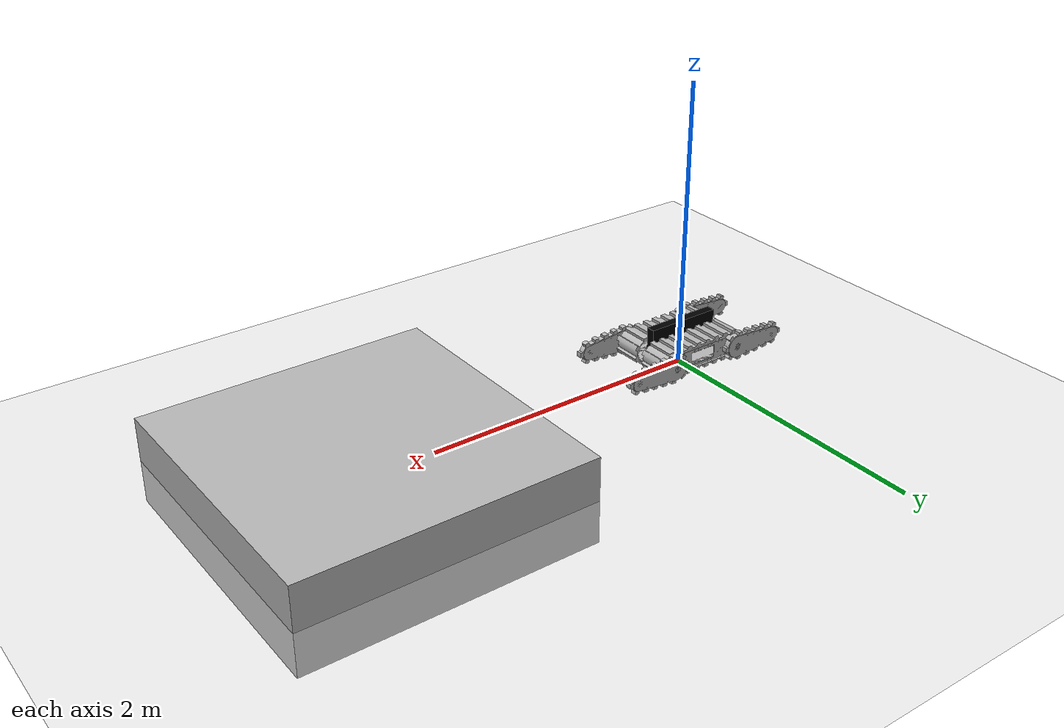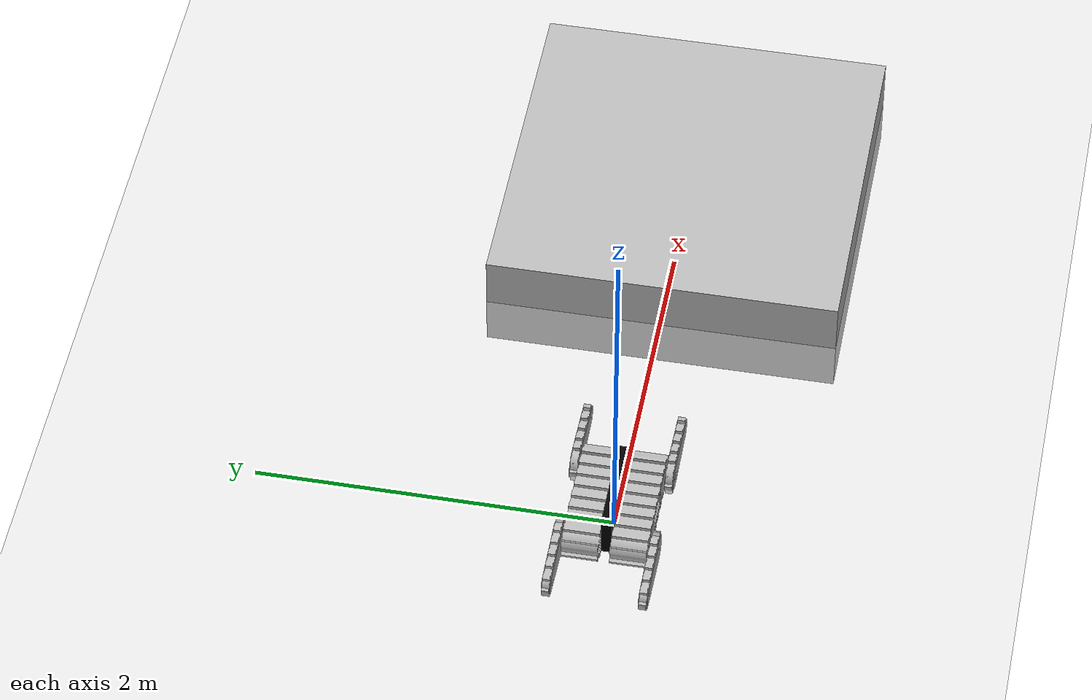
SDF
<?xml version="1.0" ?>
<sdf version="1.6">
    <world name="Nubot_Pummba_test_plate">
        <!--A demo world for tracked vehicles.-->

        <include>
            <uri>model://sun</uri>
        </include>

        <include>
            <uri>model://ground_plane</uri>
        </include>

        <model name="plate_obstacle">
            <pose frame=''>2.5 0 0 0 0 0</pose>
            <include>
                <uri>model://plate_obstacle</uri>
            </include>
        </model>

        <model name="Nubot_Pummba">
            <pose frame=''>0 0 0.15 0 0 0</pose>
            <include>
                <uri>model://Nubot_Pummba</uri>
            </include>
        </model>

    </world>
</sdf>

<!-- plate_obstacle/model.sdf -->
<sdf version="1.6">
        <model name="plate_obstacle">
            <static>true</static>
            <pose>0 0 0 0 0 0</pose>
            <link name="box">
                <collision name="plate_collision">
                    <pose frame="">0 0 0 0 0 0</pose>
                    <geometry>
                        <box>
                            <size>2 2 0.60</size>
                        </box>
                    </geometry>
                    <surface>
                        <friction>
                            <ode>
                                <mu>1</mu>
                            </ode>
                        </friction>
                    </surface>
                </collision>
                <visual name="plate_visual">
                    <pose frame="">0 0 0 0 0 0</pose>
                    <geometry>
                        <box>
                            <size>2 2 0.60</size>
                        </box>
                    </geometry>
                </visual>
            </link>
        </model>
</sdf>

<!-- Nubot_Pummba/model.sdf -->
<sdf version='1.6'>
  <model name='Nubot_Pummba'>
    <!--base_link-->
    <link name='base_link'>
      <pose frame=''>0 0 0 0 0 0</pose>
      <inertial>
        <pose frame=''>-0.122 0 0.118 1.5708 -0 0</pose>
        <mass>10</mass>
        <inertia>
          <ixx>0.0545</ixx>
          <ixy>0</ixy>
          <ixz>0</ixz>
          <iyy>0.37442</iyy>
          <iyz>0</iyz>
          <izz>0.41992</izz>
        </inertia>
      </inertial>
      <self_collide>0</self_collide>
      <gravity>1</gravity>
      <kinematic>0</kinematic>
      <enable_wind>0</enable_wind>
      <visual name='base_link_visual'>
        <pose frame=''>0 0 0.055 0 -0 0</pose>
        <geometry>
          <box>
            <size>0.544 0.06 0.25</size>
          </box>
        </geometry>
        <material>
          <shader type='pixel'>
            <normal_map>__default__</normal_map>
          </shader>
          <script>
            <name>ModelPreview_1::base_link::base_link_visual_MATERIAL_</name>
            <uri>__default__</uri>
          </script>
          <ambient>0 0 0 1</ambient>
          <diffuse>0 0 0 1</diffuse>
          <specular>0 0 0 1</specular>
          <emissive>0 0 0 1</emissive>
        </material>
        <transparency>0</transparency>
        <cast_shadows>1</cast_shadows>
      </visual>
      <collision name='base_link_collision'>
        <laser_retro>0</laser_retro>
        <max_contacts>10</max_contacts>
        <pose frame=''>0 0 0.055 0 -0 0</pose>
        <geometry>
          <box>
            <size>0.544 0.06 0.25</size>
          </box>
        </geometry>
        <surface>
          <friction>
            <ode>
              <mu>1</mu>
              <mu2>1</mu2>
              <fdir1>0 0 0</fdir1>
              <slip1>0</slip1>
              <slip2>0</slip2>
            </ode>
            <torsional>
              <coefficient>1</coefficient>
              <patch_radius>0</patch_radius>
              <surface_radius>0</surface_radius>
              <use_patch_radius>1</use_patch_radius>
              <ode>
                <slip>0</slip>
              </ode>
            </torsional>
          </friction>
          <bounce>
            <restitution_coefficient>0</restitution_coefficient>
            <threshold>1e+06</threshold>
          </bounce>
          <contact>
            <collide_without_contact>0</collide_without_contact>
            <collide_without_contact_bitmask>1</collide_without_contact_bitmask>
            <collide_bitmask>1</collide_bitmask>
            <ode>
              <soft_cfm>0</soft_cfm>
              <soft_erp>0.2</soft_erp>
              <kp>1e+13</kp>
              <kd>1</kd>
              <max_vel>0.01</max_vel>
              <min_depth>0</min_depth>
            </ode>
          </contact>
        </surface>
      </collision>
    </link>

    <!--left_track-->
    <link name='left_track'>
      <pose frame=''>-0 0.132 0 0 -0 0</pose>
      <inertial>
        <pose frame=''>0 0 0 0 -0 0</pose>
        <mass>20</mass>
        <inertia>
          <ixx>0.15</ixx>
          <ixy>0</ixy>
          <ixz>0</ixz>
          <iyy>0.9</iyy>
          <iyz>0</iyz>
          <izz>0.9</izz>
        </inertia>
      </inertial>
      <gravity>1</gravity>
      <kinematic>0</kinematic>
      <self_collide>0</self_collide>
      <enable_wind>0</enable_wind>
      <visual name='left_track_visual_1'><!--main_track-->
        <pose frame=''>0.272 0 0 0 0 1.5708</pose>
        <geometry>
          <mesh>
            <uri>model://Nubot_Pummba/meshes/main_track.dae</uri>
          </mesh>
        </geometry>
      </visual>
      <visual name='left_track_visual'><!--main_board-->
        <pose frame=''>0 0.098 0 0 0 0</pose>
        <geometry>
          <mesh>
            <uri>model://Nubot_Pummba/meshes/main_board.dae</uri>
          </mesh>
        </geometry>
      </visual>
      <visual name='left_track_visual_2'>
        <pose frame=''>-0.272 0 0 1.5708 -0 0</pose>
        <geometry>
          <cylinder>
            <length>0.2</length>
            <radius>0.105</radius>
          </cylinder>
        </geometry>
        <material>
          <shader type='pixel'>
            <normal_map>__default__</normal_map>
          </shader>
          <script>
            <name>ModelPreview_1::left_track::left_track_visual_2_MATERIAL_</name>
            <uri>__default__</uri>
          </script>
          <ambient>0 0 0 1</ambient>
          <diffuse>0 0 0 1</diffuse>
          <specular>0 0 0 1</specular>
          <emissive>1 1 1 1</emissive>
        </material>
        <transparency>1</transparency><!--disappear the other wheel-->
        <cast_shadows>1</cast_shadows>
      </visual>
      <collision name='left_track_collision_1'>
        <max_contacts>10</max_contacts>
        <pose frame=''>0.272 0 0 1.5708 -0 0</pose>
        <geometry>
          <cylinder>
            <radius>0.105</radius>
            <length>0.2</length>
          </cylinder>
        </geometry>
        <surface>
          <friction>
            <ode>
              <mu>0.7</mu>
              <mu2>150</mu2>
              <fdir1>0 1 0</fdir1>
            </ode>
          </friction>
        </surface>
      </collision>
      <collision name='left_track_collision_2'>
        <max_contacts>10</max_contacts>
        <pose frame=''>-0.272 0 0 1.5708 -0 0</pose>
        <geometry>
          <cylinder>
            <radius>0.105</radius>
            <length>0.2</length>
          </cylinder>
        </geometry>
        <surface>
          <friction>
            <ode>
              <mu>0.7</mu>
              <mu2>150</mu2>
              <fdir1>0 1 0</fdir1>
            </ode>
          </friction>
        </surface>
      </collision>
      <collision name='left_track_collision'>
        <max_contacts>10</max_contacts>
        <pose frame=''>0 0 0 1.5708 -0 1.5708</pose>
        <geometry>
          <box>
            <size>0.2 0.21 0.544</size>
          </box>
        </geometry>
        <surface>
          <friction>
            <ode>
              <mu>0.7</mu>
              <mu2>150</mu2>
              <fdir1>0 1 0</fdir1>
            </ode>
          </friction>
        </surface>
      </collision>
    </link>

    <!--right_track-->
    <link name='right_track'>
      <pose frame=''>0 -0.132 -0 0 -0 0</pose>
      <inertial>
        <pose frame=''>0 0 0 0 -0 0</pose>
        <mass>20</mass>
        <inertia>
          <ixx>0.15</ixx>
          <ixy>0</ixy>
          <ixz>0</ixz>
          <iyy>0.9</iyy>
          <iyz>0</iyz>
          <izz>0.9</izz>
        </inertia>
      </inertial>
      <gravity>1</gravity>
      <kinematic>0</kinematic>
      <self_collide>0</self_collide>
      <enable_wind>0</enable_wind>
      <visual name='right_track_visual_2'><!--main_track-->
        <pose frame=''>-0.272 0 0 0 0 -1.5708</pose>
        <geometry>
          <mesh>
            <uri>model://Nubot_Pummba/meshes/main_track.dae</uri>
          </mesh>
        </geometry>
      </visual>
      <visual name='right_track_visual'><!--main_board-->
        <pose frame=''>0 -0.098 0 0 0 0</pose>
        <geometry>
          <mesh>
            <uri>model://Nubot_Pummba/meshes/main_board.dae</uri>
          </mesh>
        </geometry>
      </visual>
      <visual name='right_track_visual_1'>
        <pose frame=''>0.272 0 0 1.5708 -0 0</pose>
        <geometry>
          <cylinder>
            <length>0.2</length>
            <radius>0.105</radius>
          </cylinder>
        </geometry>
        <material>
          <shader type='pixel'>
            <normal_map>__default__</normal_map>
          </shader>
          <script>
            <name>ModelPreview_1::right_track::right_track_visual_1_MATERIAL_</name>
            <uri>__default__</uri>
          </script>
          <ambient>0 0 0 1</ambient>
          <diffuse>0 0 0 1</diffuse>
          <specular>0 0 0 1</specular>
          <emissive>1 1 1 1</emissive>
        </material>
        <transparency>1</transparency><!--disappear the other wheel-->
        <cast_shadows>1</cast_shadows>
      </visual>
      <collision name='right_track_collision_1'>
        <max_contacts>10</max_contacts>
        <pose frame=''>0.272 0 0 1.5708 -0 0</pose>
        <geometry>
          <cylinder>
            <radius>0.105</radius>
            <length>0.2</length>
          </cylinder>
        </geometry>
        <surface>
          <friction>
            <ode>
              <mu>0.7</mu>
              <mu2>150</mu2>
              <fdir1>0 1 0</fdir1>
            </ode>
          </friction>
        </surface>
      </collision>
      <collision name='right_track_collision'>
        <max_contacts>10</max_contacts>
        <pose frame=''>0 0 0 1.5708 -0 1.5708</pose>
        <geometry>
          <box>
            <size>0.2 0.21 0.544</size>
          </box>
        </geometry>
        <surface>
          <friction>
            <ode>
              <mu>0.7</mu>
              <mu2>150</mu2>
              <fdir1>0 1 0</fdir1>
            </ode>
          </friction>
        </surface>
      </collision>
      <collision name='right_track_collision_2'>
        <max_contacts>10</max_contacts>
        <pose frame=''>-0.272 0 0 1.5708 -0 0</pose>
        <geometry>
          <cylinder>
            <radius>0.105</radius>
            <length>0.2</length>
          </cylinder>
        </geometry>
        <surface>
          <friction>
            <ode>
              <mu>0.7</mu>
              <mu2>150</mu2>
              <fdir1>0 1 0</fdir1>
            </ode>
          </friction>
        </surface>
      </collision>
    </link>

    <!--front_left_flipper-->
    <link name='front_left_flipper'>
      <pose frame=''>0.272 0.263 0 0 -0.0 0</pose>
      <inertial>
        <pose frame=''>0.135 0 0 0 -0 0</pose>
        <mass>2.4</mass>
        <inertia>
          <ixx>0.00574</ixx>
          <ixy>0</ixy>
          <ixz>0</ixz>
          <iyy>0.05090</iyy>
          <iyz>0</iyz>
          <izz>0.04640</izz>
        </inertia>
      </inertial>
      <gravity>1</gravity>
      <velocity_decay/>
      <self_collide>1</self_collide>
      <kinematic>0</kinematic>
      <enable_wind>0</enable_wind>

      <visual name='front_left_flipper_visual_large_wheel_visual'><!--flipper_track-->
        <pose frame=''>0 0 0 0 0 -1.5708</pose>
        <geometry>
          <mesh>
            <uri>model://Nubot_Pummba/meshes/flipper_track.dae</uri>
          </mesh>
        </geometry>
      </visual>
      <visual name='front_left_flipper_visual_small_wheel_visual_1'><!--flipper_board inside-->
        <pose frame=''>0 -0.023 0 0 0 3.1416</pose>
        <geometry>
          <mesh>
            <uri>model://Nubot_Pummba/meshes/flipper_board.dae</uri>
          </mesh>
        </geometry>
      </visual>
      <visual name='front_left_flipper_visual_middle_bar_visual_4'><!--flipper_board outside-->
        <pose frame=''>0 0.023 0 0 0 3.1416</pose>
        <geometry>
          <mesh>
            <uri>model://Nubot_Pummba/meshes/flipper_board.dae</uri>
          </mesh>
        </geometry>
      </visual>
      <visual name='front_left_flipper_visual_bottom_bar_visual_3'>
        <pose frame=''>0.1635 0 -0.04 0 -0.076 0</pose>
        <geometry>
          <box>
            <size>0.327 0.048 0.105</size>
          </box>
        </geometry>
        <material>
          <shader type='pixel'>
            <normal_map>__default__</normal_map>
          </shader>
          <script>
            <name>ModelPreview_1::front_left_flipper::front_left_flipper_visual_bottom_bar_visual_3_MATERIAL_</name>
            <uri>__default__</uri>
          </script>
          <ambient>0 0 0 1</ambient>
          <diffuse>0 0 0 1</diffuse>
          <specular>0 0 0 1</specular>
          <emissive>0 0 0 1</emissive>
        </material>
        <transparency>1</transparency><!--disappear the bar-->
        <cast_shadows>1</cast_shadows>
      </visual>
      <visual name='front_left_flipper_visual_top_bar_visual_2'>
        <pose frame=''>0.1635 0 0.04 0 0.076 0</pose>
        <geometry>
          <box>
            <size>0.327 0.048 0.105</size>
          </box>
        </geometry>
        <material>
          <shader type='pixel'>
            <normal_map>__default__</normal_map>
          </shader>
          <script>
            <name>ModelPreview_1::front_left_flipper::front_left_flipper_visual_top_bar_visual_2_MATERIAL_</name>
            <uri>__default__</uri>
          </script>
          <ambient>0 0 0 1</ambient>
          <diffuse>0 0 0 1</diffuse>
          <specular>0 0 0 1</specular>
          <emissive>0 0 0 1</emissive>
        </material>
        <transparency>1</transparency><!--disappear the bar-->
        <cast_shadows>1</cast_shadows>
      </visual>

      <collision name='front_left_flipper_collision_large_wheel_collision'>
        <max_contacts>20</max_contacts>
        <pose frame=''>0 0 0 1.5708 -0 0</pose>
        <geometry>
          <cylinder>
            <radius>0.105</radius>
            <length>0.04</length>
          </cylinder>
        </geometry>
        <surface>
          <friction>
            <ode>
              <mu>0.7</mu>
              <mu2>150</mu2>
              <fdir1>0 1 0</fdir1>
            </ode>
          </friction>
          <contact>
            <ode/>
          </contact>
        </surface>
      </collision>
      <collision name='front_left_flipper_collision_small_wheel_collision_1'>
        <max_contacts>20</max_contacts>
        <pose frame=''>0.327 0 0 1.5708 -0 0</pose>
        <geometry>
          <cylinder>
            <radius>0.08</radius>
            <length>0.04</length>
          </cylinder>
        </geometry>
        <surface>
          <friction>
            <ode>
              <mu>0.7</mu>
              <mu2>150</mu2>
              <fdir1>0 1 0</fdir1>
            </ode>
          </friction>
          <contact>
            <ode/>
          </contact>
        </surface>
      </collision>
      <collision name='front_left_flipper_collision_middle_bar_collision_4'>
        <max_contacts>20</max_contacts>
        <pose frame=''>0.166 0 0 0 0 0</pose>
        <geometry>
          <box>
            <size>0.2 0.048 0.07</size>
          </box>
        </geometry>
        <surface>
          <friction>
            <ode>
              <mu>0.7</mu>
              <mu2>150</mu2>
              <fdir1>0 1 0</fdir1>
            </ode>
          </friction>
          <contact>
            <ode/>
          </contact>
        </surface>
      </collision>
      <collision name='front_left_flipper_collision_bottom_bar_collision_3'>
        <max_contacts>20</max_contacts>
        <pose frame=''>0.1635 0 -0.04 0 -0.076 0</pose>
        <geometry>
          <box>
            <size>0.327 0.048 0.105</size>
          </box>
        </geometry>
        <surface>
          <friction>
            <ode>
              <mu>0.7</mu>
              <mu2>150</mu2>
              <fdir1>0 1 0</fdir1>
            </ode>
          </friction>
          <contact>
            <ode/>
          </contact>
        </surface>
      </collision>
      <collision name='front_left_flipper_collision_top_bar_collision_2'>
        <max_contacts>20</max_contacts>
        <pose frame=''>0.1635 0 0.04 0 0.076 0</pose>
        <geometry>
          <box>
            <size>0.327 0.048 0.105</size>
          </box>
        </geometry>
        <surface>
          <friction>
            <ode>
              <mu>0.7</mu>
              <mu2>150</mu2>
              <fdir1>0 1 0</fdir1>
            </ode>
          </friction>
          <contact>
            <ode/>
          </contact>
        </surface>
      </collision>
    </link>

    <!--rear_left_flipper-->
    <link name='rear_left_flipper'>
      <pose frame=''>-0.272 0.263 0 3.1416 -0.0 3.1416</pose>
      <inertial>
        <pose frame=''>0.135 0 0 0 -0 0</pose>
        <mass>2.4</mass>
        <inertia>
          <ixx>0.00574</ixx>
          <ixy>0</ixy>
          <ixz>0</ixz>
          <iyy>0.05090</iyy>
          <iyz>0</iyz>
          <izz>0.04640</izz>
        </inertia>
      </inertial>
      <gravity>1</gravity>
      <velocity_decay/>
      <self_collide>1</self_collide>
      <kinematic>0</kinematic>
      <enable_wind>0</enable_wind>
      <visual name='rear_left_flipper_visual_large_wheel_visual'><!--flipper_track-->
        <pose frame=''>0 0 0 0 0 -1.5708</pose>
        <geometry>
          <mesh>
            <uri>model://Nubot_Pummba/meshes/flipper_track.dae</uri>
          </mesh>
        </geometry>
      </visual>
      <visual name='rear_left_flipper_visual_small_wheel_visual_1'><!--flipper_board inside-->
        <pose frame=''>0 -0.023 0 0 0 3.1416</pose>
        <geometry>
          <mesh>
            <uri>model://Nubot_Pummba/meshes/flipper_board.dae</uri>
          </mesh>
        </geometry>
      </visual>
      <visual name='rear_left_flipper_visual_middle_bar_visual_4'><!--flipper_board outside-->
        <pose frame=''>0 0.023 0 0 0 3.1416</pose>
        <geometry>
          <mesh>
            <uri>model://Nubot_Pummba/meshes/flipper_board.dae</uri>
          </mesh>
        </geometry>
      </visual>
      <visual name='rear_left_flipper_visual_bottom_bar_visual_3'>
        <pose frame=''>0.1653 0 -0.04 0 -0.076 0</pose>
        <geometry>
          <box>
            <size>0.327 0.048 0.105</size>
          </box>
        </geometry>
        <material>
          <shader type='pixel'>
            <normal_map>__default__</normal_map>
          </shader>
          <script>
            <name>ModelPreview_1::rear_left_flipper::rear_left_flipper_visual_bottom_bar_visual_3_MATERIAL_</name>
            <uri>__default__</uri>
          </script>
          <ambient>0 0 0 1</ambient>
          <diffuse>0 0 0 1</diffuse>
          <specular>0 0 0 1</specular>
          <emissive>0 0 0 1</emissive>
        </material>
        <transparency>1</transparency><!--disappear the bar-->
        <cast_shadows>1</cast_shadows>
      </visual>
      <visual name='rear_left_flipper_visual_top_bar_visual_2'>
        <pose frame=''>0.1635 0 0.04 0 0.076 0</pose>
        <geometry>
          <box>
            <size>0.327 0.048 0.105</size>
          </box>
        </geometry>
        <material>
          <shader type='pixel'>
            <normal_map>__default__</normal_map>
          </shader>
          <script>
            <name>ModelPreview_1::rear_left_flipper::rear_left_flipper_visual_top_bar_visual_2_MATERIAL_</name>
            <uri>__default__</uri>
          </script>
          <ambient>0 0 0 1</ambient>
          <diffuse>0 0 0 1</diffuse>
          <specular>0 0 0 1</specular>
          <emissive>0 0 0 1</emissive>
        </material>
        <transparency>1</transparency><!--disappear the bar-->
        <cast_shadows>1</cast_shadows>
      </visual>

      <collision name='rear_left_flipper_collision_large_wheel_collision'>
        <max_contacts>20</max_contacts>
        <pose frame=''>0 0 0 1.5708 -0 0</pose>
        <geometry>
          <cylinder>
            <radius>0.105</radius>
            <length>0.04</length>
          </cylinder>
        </geometry>
        <surface>
          <friction>
            <ode>
              <mu>0.7</mu>
              <mu2>150</mu2>
              <fdir1>0 1 0</fdir1>
            </ode>
          </friction>
          <contact>
            <ode/>
          </contact>
        </surface>
      </collision>
      <collision name='rear_left_flipper_collision_small_wheel_collision_1'>
        <max_contacts>20</max_contacts>
        <pose frame=''>0.327 0 0 1.5708 -0 0</pose>
        <geometry>
          <cylinder>
            <radius>0.08</radius>
            <length>0.04</length>
          </cylinder>
        </geometry>
        <surface>
          <friction>
            <ode>
              <mu>0.7</mu>
              <mu2>150</mu2>
              <fdir1>0 1 0</fdir1>
            </ode>
          </friction>
        </surface>
      </collision>
      <collision name='rear_left_flipper_collision_middle_bar_collision_4'>
        <max_contacts>20</max_contacts>
        <pose frame=''>0.166 0 0 0 0 0</pose>
        <geometry>
          <box>
            <size>0.2 0.048 0.07</size>
          </box>
        </geometry>
        <surface>
          <friction>
            <ode>
              <mu>0.7</mu>
              <mu2>150</mu2>
              <fdir1>0 1 0</fdir1>
            </ode>
          </friction>
        </surface>
      </collision>
      <collision name='rear_left_flipper_collision_bottom_bar_collision_3'>
        <max_contacts>20</max_contacts>
        <pose frame=''>0.1635 0 -0.04 0 -0.076 0</pose>
        <geometry>
          <box>
            <size>0.327 0.048 0.105</size>
          </box>
        </geometry>
        <surface>
          <friction>
            <ode>
              <mu>0.7</mu>
              <mu2>150</mu2>
              <fdir1>0 1 0</fdir1>
            </ode>
          </friction>
        </surface>
      </collision>
      <collision name='rear_left_flipper_collision_top_bar_collision_2'>
        <max_contacts>20</max_contacts>
        <pose frame=''>0.1635 0 0.04 0 0.076 0</pose>
        <geometry>
          <box>
            <size>0.327 0.048 0.105</size>
          </box>
        </geometry>
        <surface>
          <friction>
            <ode>
              <mu>0.7</mu>
              <mu2>150</mu2>
              <fdir1>0 1 0</fdir1>
            </ode>
          </friction>
        </surface>
      </collision>
    </link>

    <!--front_right_flipper-->
    <link name='front_right_flipper'>
      <pose frame=''>0.272 -0.263 0 3.1416 0.0 3.1416</pose>
      <inertial>
        <pose frame=''>-0.135 0 0 0 -0 0</pose>
        <mass>2.4</mass>
        <inertia>
          <ixx>0.00574</ixx>
          <ixy>0</ixy>
          <ixz>0</ixz>
          <iyy>0.05090</iyy>
          <iyz>0</iyz>
          <izz>0.04640</izz>
        </inertia>
      </inertial>
      <gravity>1</gravity>
      <velocity_decay/>
      <self_collide>1</self_collide>
      <kinematic>0</kinematic>
      <enable_wind>0</enable_wind>

      <visual name='front_right_flipper_visual_large_wheel_visual'><!--flipper_track-->
        <pose frame=''>0 0 0 0 0 1.5708</pose>
        <geometry>
          <mesh>
            <uri>model://Nubot_Pummba/meshes/flipper_track.dae</uri>
          </mesh>
        </geometry>
      </visual>
      <visual name='front_right_flipper_visual_small_wheel_visual_1'><!--flipper_board inside-->
        <pose frame=''>0 0.023 0 0 0 0</pose>
        <geometry>
          <mesh>
            <uri>model://Nubot_Pummba/meshes/flipper_board.dae</uri>
          </mesh>
        </geometry>
      </visual>
      <visual name='front_right_flipper_visual_middle_bar_visual_4'><!--flipper_board outside-->
        <pose frame=''>0 -0.023 0 -0 0 0</pose>
        <geometry>
          <mesh>
            <uri>model://Nubot_Pummba/meshes/flipper_board.dae</uri>
          </mesh>
        </geometry>
      </visual>
      <visual name='front_right_flipper_visual_bottom_bar_visual_3'>
        <pose frame=''>-0.1635 0 -0.04 0 -0.076 -3.1416</pose>
        <geometry>
          <box>
            <size>0.327 0.048 0.105</size>
          </box>
        </geometry>
        <material>
          <shader type='pixel'>
            <normal_map>__default__</normal_map>
          </shader>
          <script>
            <name>ModelPreview_1::front_right_flipper::front_right_flipper_visual_bottom_bar_visual_3_MATERIAL_</name>
            <uri>__default__</uri>
          </script>
          <ambient>0 0 0 1</ambient>
          <diffuse>0 0 0 1</diffuse>
          <specular>0 0 0 1</specular>
          <emissive>0 0 0 1</emissive>
        </material>
        <transparency>1</transparency><!--disappear the bar-->
        <cast_shadows>1</cast_shadows>
      </visual>
      <visual name='front_right_flipper_visual_top_bar_visual_2'>
        <pose frame=''>-0.1635 0 0.04 -0 0.076 -3.1416</pose>
        <geometry>
          <box>
            <size>0.327 0.048 0.105</size>
          </box>
        </geometry>
        <material>
          <shader type='pixel'>
            <normal_map>__default__</normal_map>
          </shader>
          <script>
            <name>ModelPreview_1::front_right_flipper::front_right_flipper_visual_top_bar_visual_2_MATERIAL_</name>
            <uri>__default__</uri>
          </script>
          <ambient>0 0 0 1</ambient>
          <diffuse>0 0 0 1</diffuse>
          <specular>0 0 0 1</specular>
          <emissive>0 0 0 1</emissive>
        </material>
        <transparency>1</transparency><!--disappear the bar-->
        <cast_shadows>1</cast_shadows>
      </visual>

      <collision name='front_right_flipper_collision_large_wheel_collision'>
        <max_contacts>20</max_contacts>
        <pose frame=''>0 0 0 1.5708 -0 0</pose>
        <geometry>
          <cylinder>
            <radius>0.105</radius>
            <length>0.04</length>
          </cylinder>
        </geometry>
        <surface>
          <friction>
            <ode>
              <mu>0.7</mu>
              <mu2>150</mu2>
              <fdir1>0 1 0</fdir1>
            </ode>
          </friction>
        </surface>
      </collision>
      <collision name='front_right_flipper_collision_small_wheel_collision_1'>
        <max_contacts>20</max_contacts>
        <pose frame=''>-0.327 0 0 1.5708 -0 0</pose>
        <geometry>
          <cylinder>
            <radius>0.08</radius>
            <length>0.04</length>
          </cylinder>
        </geometry>
        <surface>
          <friction>
            <ode>
              <mu>0.7</mu>
              <mu2>150</mu2>
              <fdir1>0 1 0</fdir1>
            </ode>
          </friction>
        </surface>
      </collision>
      <collision name='front_right_flipper_collision_middle_bar_collision_4'>
        <max_contacts>20</max_contacts>
        <pose frame=''>-0.166 0 0 -0 0 -3.1416</pose>
        <geometry>
          <box>
            <size>0.2 0.048 0.07</size>
          </box>
        </geometry>
        <surface>
          <friction>
            <ode>
              <mu>0.7</mu>
              <mu2>150</mu2>
              <fdir1>0 1 0</fdir1>
            </ode>
          </friction>
        </surface>
      </collision>
      <collision name='front_right_flipper_collision_bottom_bar_collision_3'>
        <max_contacts>20</max_contacts>
        <pose frame=''>-0.1635 0 -0.04 0 -0.076 -3.1416</pose>
        <geometry>
          <box>
            <size>0.327 0.048 0.105</size>
          </box>
        </geometry>
        <surface>
          <friction>
            <ode>
              <mu>0.7</mu>
              <mu2>150</mu2>
              <fdir1>0 1 0</fdir1>
            </ode>
          </friction>
        </surface>
      </collision>
      <collision name='front_right_flipper_collision_top_bar_collision_2'>
        <max_contacts>20</max_contacts>
        <pose frame=''>-0.1635 0 0.04 -0 0.076 -3.1416</pose>
        <geometry>
          <box>
            <size>0.327 0.048 0.105</size>
          </box>
        </geometry>
        <surface>
          <friction>
            <ode>
              <mu>0.7</mu>
              <mu2>150</mu2>
              <fdir1>0 1 0</fdir1>
            </ode>
          </friction>
        </surface>
      </collision>
    </link>

    <!--rear_right_flipper-->
    <link name='rear_right_flipper'>
      <pose frame=''>-0.272 -0.263 0 0 0.0 0</pose>
      <inertial>
        <pose frame=''>-0.135 0 0 0 -0 0</pose>
        <mass>2.4</mass>
        <inertia>
          <ixx>0.00574</ixx>
          <ixy>0</ixy>
          <ixz>0</ixz>
          <iyy>0.05090</iyy>
          <iyz>0</iyz>
          <izz>0.04640</izz>
        </inertia>
      </inertial>
      <gravity>1</gravity>
      <velocity_decay/>
      <self_collide>1</self_collide>
      <kinematic>0</kinematic>
      <enable_wind>0</enable_wind>
      <visual name='rear_right_flipper_visual_large_wheel_visual'><!--flipper_track-->
        <pose frame=''>0 0 0 0 0 1.5708</pose>
        <geometry>
          <mesh>
            <uri>model://Nubot_Pummba/meshes/flipper_track.dae</uri>
          </mesh>
        </geometry>
      </visual>
      <visual name='rear_right_flipper_visual_small_wheel_visual_1'><!--flipper_board inside-->
        <pose frame=''>0 0.023 0 0 0 0</pose>
        <geometry>
          <mesh>
            <uri>model://Nubot_Pummba/meshes/flipper_board.dae</uri>
          </mesh>
        </geometry>
      </visual>
      <visual name='rear_right_flipper_visual_middle_bar_visual_4'><!--flipper_board outsides-->
        <pose frame=''>0 -0.023 0 -0 0 0</pose>
        <geometry>
          <mesh>
            <uri>model://Nubot_Pummba/meshes/flipper_board.dae</uri>
          </mesh>
        </geometry>
      </visual>
      <visual name='rear_right_flipper_visual_bottom_bar_visual_3'>
        <pose frame=''>-0.1635 0 -0.04 0 -0.076 -3.1416</pose>
        <geometry>
          <box>
            <size>0.327 0.048 0.105</size>
          </box>
        </geometry>
        <material>
          <shader type='pixel'>
            <normal_map>__default__</normal_map>
          </shader>
          <script>
            <name>ModelPreview_1::rear_right_flipper::rear_right_flipper_visual_bottom_bar_visual_3_MATERIAL_</name>
            <uri>__default__</uri>
          </script>
          <ambient>0 0 0 1</ambient>
          <diffuse>0 0 0 1</diffuse>
          <specular>0 0 0 1</specular>
          <emissive>0 0 0 1</emissive>
        </material>
        <transparency>1</transparency><!--disappear the bar-->
        <cast_shadows>1</cast_shadows>
      </visual>
      <visual name='rear_right_flipper_visual_top_bar_visual_2'>
        <pose frame=''>-0.1635 0 0.04 -0 0.076 -3.1416</pose>
        <geometry>
          <box>
            <size>0.327 0.048 0.105</size>
          </box>
        </geometry>
        <material>
          <shader type='pixel'>
            <normal_map>__default__</normal_map>
          </shader>
          <script>
            <name>ModelPreview_1::rear_right_flipper::rear_right_flipper_visual_top_bar_visual_2_MATERIAL_</name>
            <uri>__default__</uri>
          </script>
          <ambient>0 0 0 1</ambient>
          <diffuse>0 0 0 1</diffuse>
          <specular>0 0 0 1</specular>
          <emissive>0 0 0 1</emissive>
        </material>
        <transparency>1</transparency><!--disappear the bar-->
        <cast_shadows>1</cast_shadows>
      </visual>

      <collision name='rear_right_flipper_collision_large_wheel_collision'>
        <max_contacts>20</max_contacts>
        <pose frame=''>0 0 0 1.5708 -0 0</pose>
        <geometry>
          <cylinder>
            <radius>0.105</radius>
            <length>0.04</length>
          </cylinder>
        </geometry>
        <surface>
          <friction>
            <ode>
              <mu>0.7</mu>
              <mu2>150</mu2>
              <fdir1>0 1 0</fdir1>
            </ode>
          </friction>
        </surface>
      </collision>
      <collision name='rear_right_flipper_collision_small_wheel_collision_1'>
        <max_contacts>20</max_contacts>
        <pose frame=''>-0.327 0 0 1.5708 -0 0</pose>
        <geometry>
          <cylinder>
            <radius>0.08</radius>
            <length>0.04</length>
          </cylinder>
        </geometry>
        <surface>
          <friction>
            <ode>
              <mu>0.7</mu>
              <mu2>150</mu2>
              <fdir1>0 1 0</fdir1>
            </ode>
          </friction>
        </surface>
      </collision>
      <collision name='rear_right_flipper_collision_middle_bar_collision_4'>
        <max_contacts>20</max_contacts>
        <pose frame=''>-0.166 0 0 -0 0 -3.1416</pose>
        <geometry>
          <box>
            <size>0.2 0.048 0.07</size>
          </box>
        </geometry>
        <surface>
          <friction>
            <ode>
              <mu>0.7</mu>
              <mu2>150</mu2>
              <fdir1>0 1 0</fdir1>
            </ode>
          </friction>
        </surface>
      </collision>
      <collision name='rear_right_flipper_collision_bottom_bar_collision_3'>
        <max_contacts>20</max_contacts>
        <pose frame=''>-0.1635 0 -0.04 0 -0.076 -3.1416</pose>
        <geometry>
          <box>
            <size>0.327 0.048 0.105</size>
          </box>
        </geometry>
        <surface>
          <friction>
            <ode>
              <mu>0.7</mu>
              <mu2>150</mu2>
              <fdir1>0 1 0</fdir1>
            </ode>
          </friction>
        </surface>
      </collision>
      <collision name='rear_right_flipper_collision_top_bar_collision_2'>
        <max_contacts>20</max_contacts>
        <pose frame=''>-0.1635 0 0.04 -0 0.076 -3.1416</pose>
        <geometry>
          <box>
            <size>0.327 0.048 0.105</size>
          </box>
        </geometry>
        <surface>
          <friction>
            <ode>
              <mu>0.7</mu>
              <mu2>150</mu2>
              <fdir1>0 1 0</fdir1>
            </ode>
          </friction>
        </surface>
      </collision>
    </link>

    <!--joints-->
    <!--main_track joints-->
    <joint name='left_track_j' type='fixed'>
      <parent>base_link</parent>
      <child>left_track</child>
    </joint>
    <joint name='right_track_j' type='fixed'>
      <parent>base_link</parent>
      <child>right_track</child>
    </joint>

    <!--left_flipper joints-->
    <joint name='front_left_flipper_j' type='revolute'>
      <parent>left_track</parent>
      <child>front_left_flipper</child>
      <pose frame=''>0 0 0 0 -0 0</pose>
      <axis>
        <xyz>0 1 0</xyz>
        <use_parent_model_frame>1</use_parent_model_frame>
        <limit>
          <lower>-3.1416</lower>
          <upper>3.1416</upper>
          <effort>-1</effort>
          <velocity>0.15</velocity>
        </limit>
        <dynamics>
          <spring_reference>0</spring_reference>
          <spring_stiffness>0</spring_stiffness>
          <!--The physical velocity dependent viscous damping coefficient of the joint-->
          <!--Due to the controll method is directly set the position target-->
          <damping>10</damping>
          <friction>0</friction>
        </dynamics>
      </axis>
      <physics>
        <ode>
          <implicit_spring_damper>1</implicit_spring_damper>
          <cfm_damping>1</cfm_damping>
          <limit>
            <cfm>0</cfm>
            <erp>0.2</erp>
          </limit>
        </ode>
      </physics>
    </joint>
    <joint name='rear_left_flipper_j' type='revolute'>
      <parent>left_track</parent>
      <child>rear_left_flipper</child>
      <pose frame=''>0 0 0 0 -0 0</pose>
      <axis>
        <xyz>0 1 0</xyz>
        <use_parent_model_frame>1</use_parent_model_frame>
        <limit>
          <lower>-3.1416</lower>
          <upper>3.1416</upper>
          <effort>-1</effort>
          <velocity>0.15</velocity>
        </limit>
        <dynamics>
          <spring_reference>0</spring_reference>
          <spring_stiffness>0</spring_stiffness>
          <!--The physical velocity dependent viscous damping coefficient of the joint-->
          <!--Due to the controll method is directly set the position target-->
          <damping>10</damping>
          <friction>0</friction>
        </dynamics>
      </axis>
      <physics>
        <ode>
          <implicit_spring_damper>1</implicit_spring_damper>
          <cfm_damping>1</cfm_damping>
          <limit>
            <cfm>0</cfm>
            <erp>0.2</erp>
          </limit>
        </ode>
      </physics>
    </joint>

    <!--right_flipper joints-->
    <joint name='front_right_flipper_j' type='revolute'>
      <parent>right_track</parent>
      <child>front_right_flipper</child>
      <pose frame=''>0 0 0 0 -0 0</pose>
      <axis>
        <xyz>0 1 0</xyz>
        <use_parent_model_frame>1</use_parent_model_frame>
        <limit>
          <lower>-3.1416</lower>
          <upper>3.1416</upper>
          <effort>-1</effort>
          <velocity>0.15</velocity>
        </limit>
        <dynamics>
          <spring_reference>0</spring_reference>
          <spring_stiffness>0</spring_stiffness>
          <!--The physical velocity dependent viscous damping coefficient of the joint-->
          <!--Due to the controll method is directly set the position target-->
          <damping>10</damping>
          <friction>0</friction>
        </dynamics>
      </axis>
      <physics>
        <ode>
          <implicit_spring_damper>1</implicit_spring_damper>
          <cfm_damping>1</cfm_damping>
          <limit>
            <cfm>0</cfm>
            <erp>0.2</erp>
          </limit>
        </ode>
      </physics>
    </joint>
    <joint name='rear_right_flipper_j' type='revolute'>
      <parent>right_track</parent>
      <child>rear_right_flipper</child>
      <pose frame=''>0 0 0 0 -0 0</pose>
      <axis>
        <xyz>0 1 0</xyz>
        <use_parent_model_frame>1</use_parent_model_frame>
        <limit>
          <lower>-3.1416</lower>
          <upper>3.1416</upper>
          <effort>-1</effort>
          <velocity>0.15</velocity>
        </limit>
        <dynamics>
          <spring_reference>0</spring_reference>
          <spring_stiffness>0</spring_stiffness>
          <!--The physical velocity dependent viscous damping coefficient of the joint-->
          <!--Due to the controll method is directly set the position target-->
          <damping>10</damping>
          <friction>0</friction>
        </dynamics>
      </axis>
      <physics>
        <ode>
          <implicit_spring_damper>1</implicit_spring_damper>
          <cfm_damping>1</cfm_damping>
          <limit>
            <cfm>0</cfm>
            <erp>0.2</erp>
          </limit>
        </ode>
      </physics>
    </joint>

    <static>0</static>
    <allow_auto_disable>1</allow_auto_disable>

    <plugin name='Nubot_Pummba_Gazebo_Plugin' filename='libNubotPummbaGazeboPlugin.so'>
      <!--The link tags of tracks-->
      <body>base_link</body>
      <left_track>left_track</left_track>
      <right_track>right_track</right_track>
      <left_flipper>front_left_flipper</left_flipper>
      <left_flipper>rear_left_flipper</left_flipper>
      <right_flipper>front_right_flipper</right_flipper>
      <right_flipper>rear_right_flipper</right_flipper>
      <!--The flippers' joint tag-->
      <front_left_flipper_j>front_left_flipper_j</front_left_flipper_j>
      <rear_left_flipper_j>rear_left_flipper_j</rear_left_flipper_j>
      <front_right_flipper_j>front_right_flipper_j</front_right_flipper_j>
      <rear_right_flipper_j>rear_right_flipper_j</rear_right_flipper_j>
      <!--The Mu/Mu2 of tracks, which influnce the simulating performance-->
      <track_mu>2</track_mu>
      <track_mu2>0.5</track_mu2>
      <!--The PID parameter of flippers position controll & initial position 1.5708 -->
      <flip_p>1000</flip_p>
      <flip_i>1</flip_i>
      <flip_d>0</flip_d>
      <flip_initial>1.5708</flip_initial>
      <!--The parameters of tracks-->
      <tracksSeparation>0.165</tracksSeparation>
      <steeringEfficiency>0.5</steeringEfficiency>
      <maxLinearSpeed>2.0</maxLinearSpeed>
      <maxAngularSpeed>1.5</maxAngularSpeed>
    </plugin>

  </model>
</sdf>
